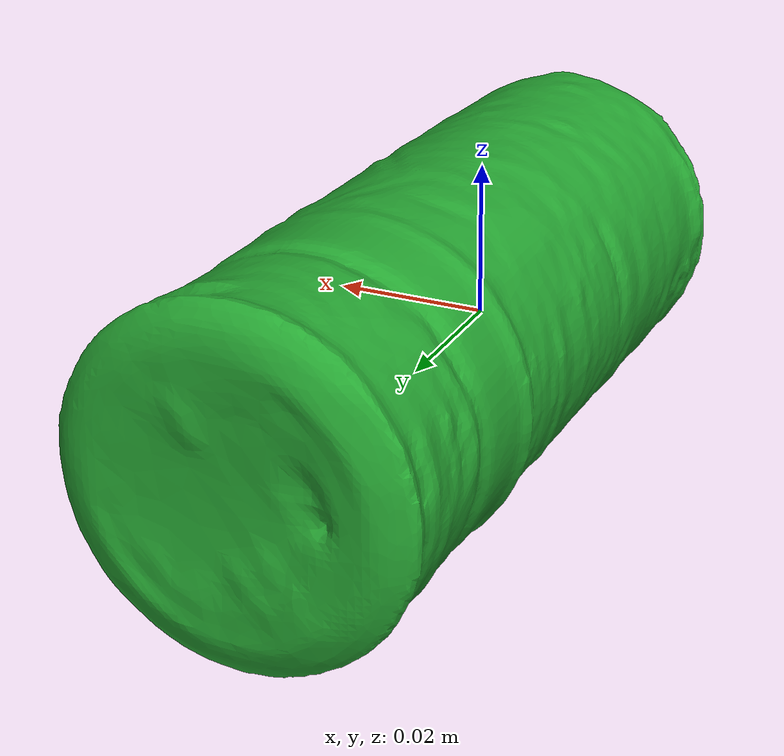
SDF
<?xml version='1.0'?>
<sdf version="1.4">
  <model name="GreenSaltCylinder">
    <static>false</static>
    <link name="link">
      <inertial>
        <pose>0.002456093154577073 0.010846495040392666 0.0013715017323726506 -1.226877847426299 -1.5125096044968975 -0.3591795954168261</pose>
        <mass>0.014397683106845267</mass>
        <inertia>
          <ixx>1.3675724864400546e-05</ixx>
          <ixy>4.032165735959415e-23</ixy>
          <ixz>-3.389165811514445e-22</ixz>
          <iyy>1.365758304341e-05</iyy>
          <iyz>5.484250113924021e-23</iyz>
          <izz>3.2778640794177247e-06</izz>
        </inertia>
      </inertial>
      <collision name="collision">
        <geometry>
          <mesh>
            <!-- Use a downsampled mesh for collisions -->
            <uri>model:///GreenSaltCylinder/GreenSaltCylinder_250_collision.obj</uri>
	        </mesh>
        </geometry>
        <surface>
      </surface>
      </collision>
      <visual name="visual">
        <geometry>
          <mesh>
            <uri>model:///GreenSaltCylinder/GreenSaltCylinder_25k_tex.obj</uri>
	        </mesh>
        </geometry>
        <material>
          <script>
            <uri>model:///GreenSaltCylinder/GreenSaltCylinder.material</uri>
            <name>GreenSaltCylinder</name>
          </script>
        </material>
      </visual>
    </link>
  </model>
</sdf>
